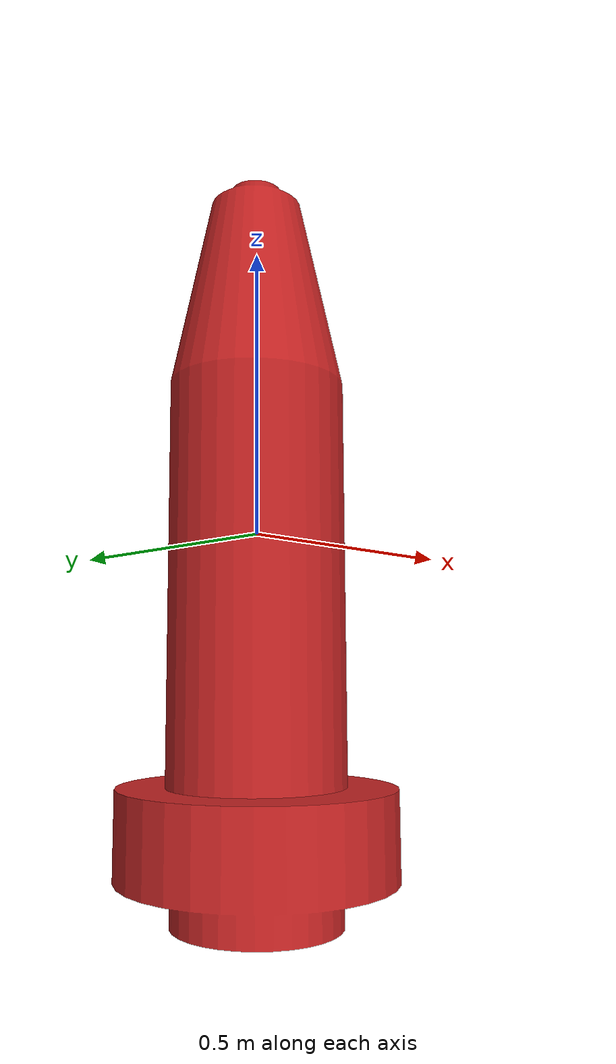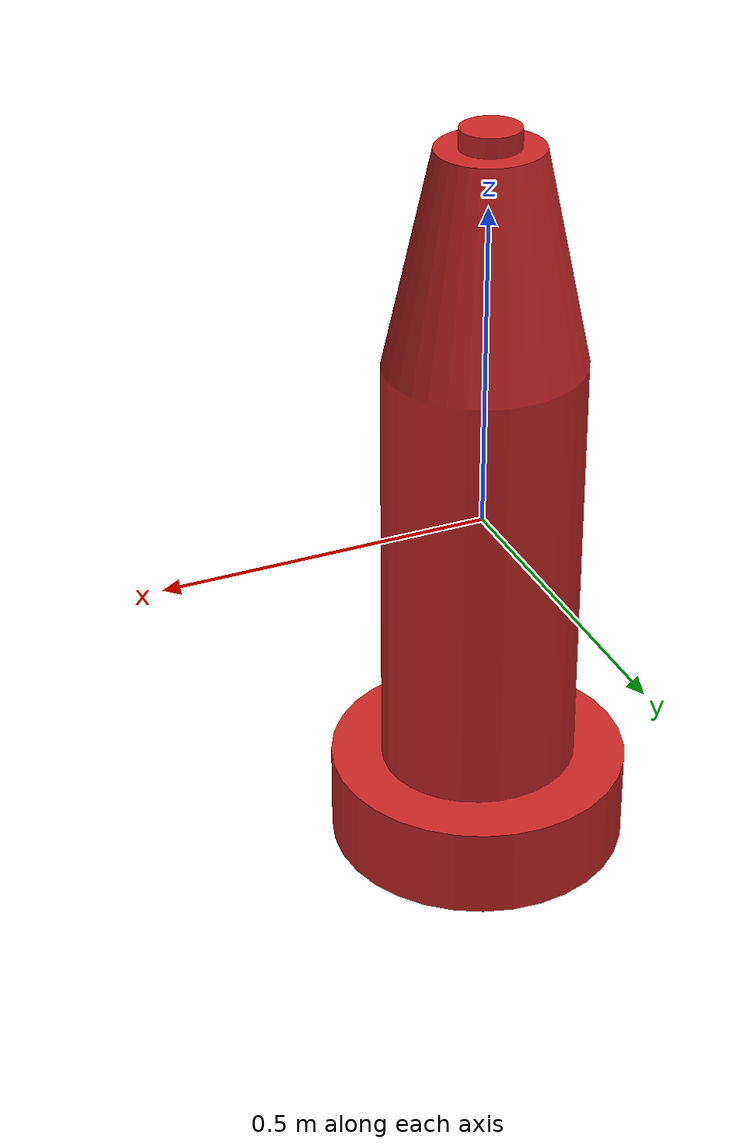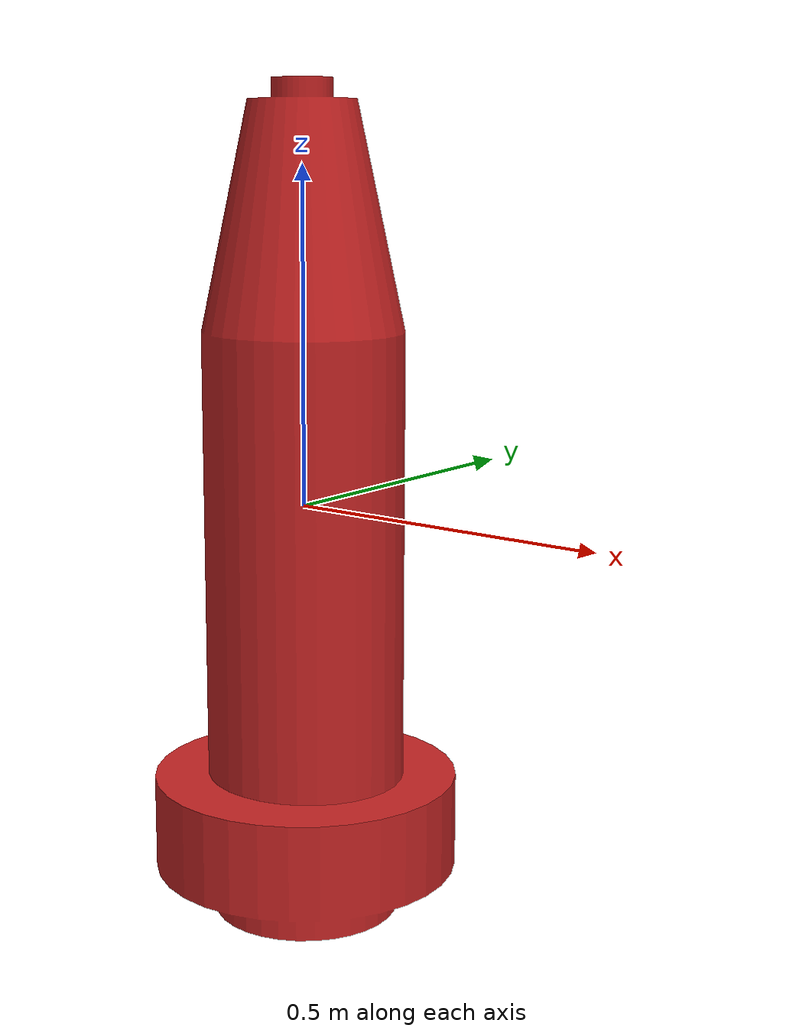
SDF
<?xml version="1.0" ?>
<sdf version="1.6">
  <model name="surmark950410">
    <link name="link">
      <inertial>
        <pose>0 0 -2 0 0 0</pose>
        <!-- Mass determined based on buoyancy geometry so object
             floats at mid-point of sphere -->
        <mass>25</mass>
        <!-- Mark only - based on cylinder -->
        <inertia>
          <ixx>1.0</ixx>
          <ixy>0</ixy>
          <ixz>0</ixz>
          <iyy>1.0</iyy>
          <iyz>0</iyz>
          <izz>0.1</izz>
        </inertia>
      </inertial>
      <collision name="collision_inner">
        <pose>0 0 -0.01 0 0 0</pose>
        <geometry>
          <cylinder>
            <radius>0.15</radius>
            <length>1.26</length>
          </cylinder>
        </geometry>
      </collision>
      <collision name="collision_outer">
        <pose>0 0 -0.48 0 0 0</pose>
        <geometry>
          <cylinder>
            <radius>0.24</radius>
            <length>0.15</length>
          </cylinder>
        </geometry>
      </collision>
      <visual name="visual">
        <geometry>
	        <mesh><uri>model://surmark950410/mesh/surmark950410.dae</uri></mesh>
        </geometry>
        <material>
          <script>
            <uri>model://surmark950410/materials/scripts/surmark950410.material</uri>
            <name>surmark950410/Red</name>
          </script>
        </material>
      </visual>
    </link>

    <plugin name="BuoyancyPlugin" filename="libbuoyancy_gazebo_plugin.so">
      <wave_model>ocean_waves</wave_model>
      <fluid_density>1000</fluid_density>
      <fluid_level>0.0</fluid_level>
      <linear_drag>25.0</linear_drag>
      <angular_drag>2.0</angular_drag>
      <buoyancy name="buoyancy_sphere">
        <link_name>link</link_name>
        <pose>0 0 -0.48 0 0 0</pose>
        <geometry>
          <sphere>
            <radius>0.23</radius>
          </sphere>
        </geometry>
      </buoyancy>
    </plugin>

  </model>
</sdf>
